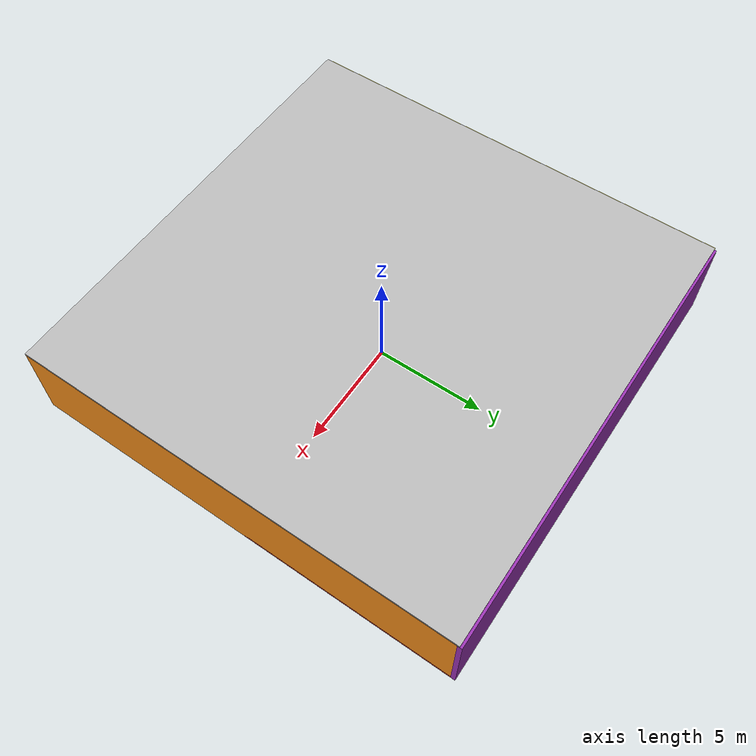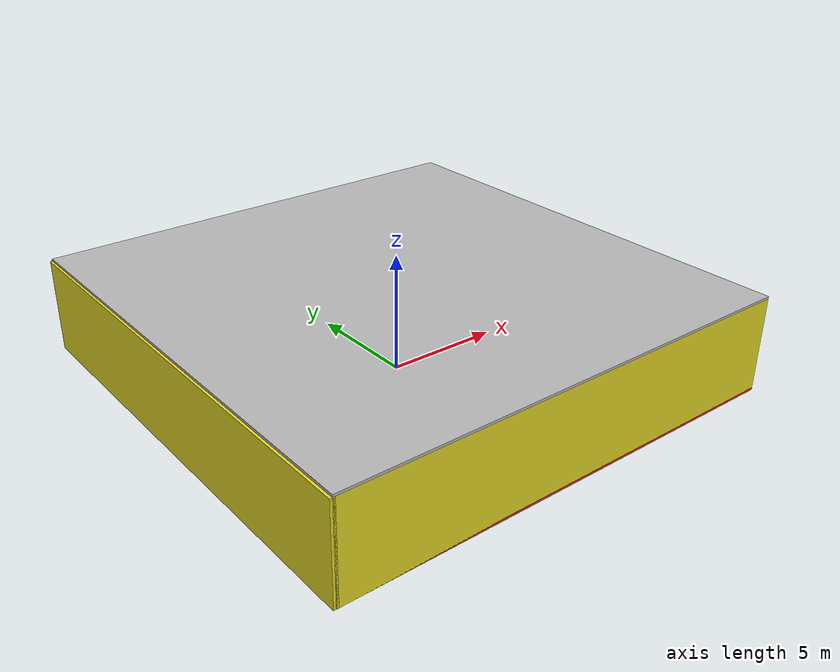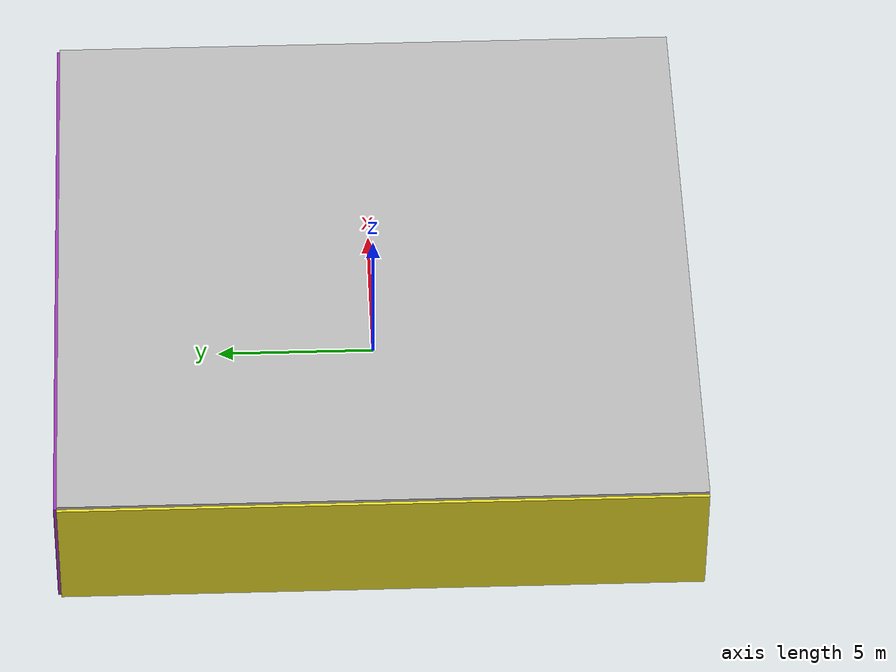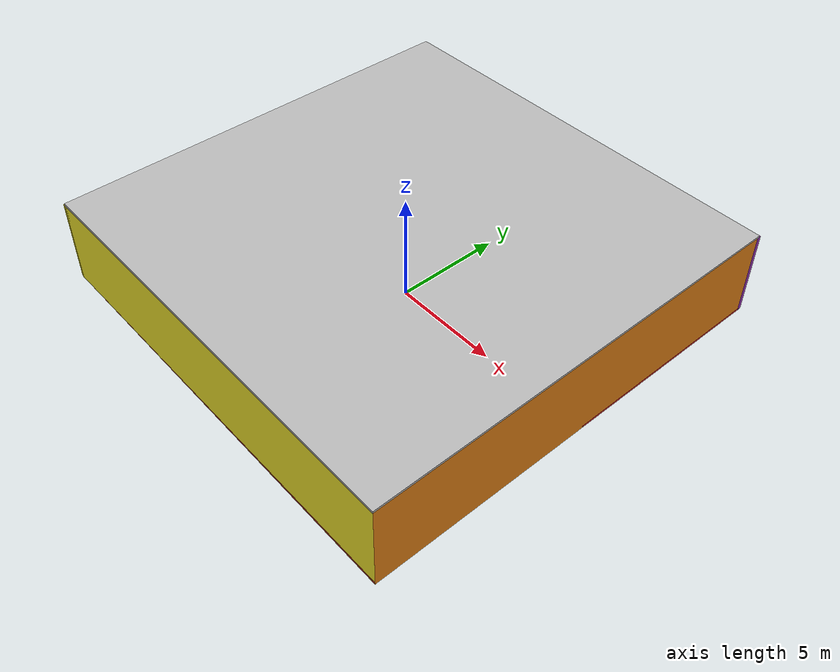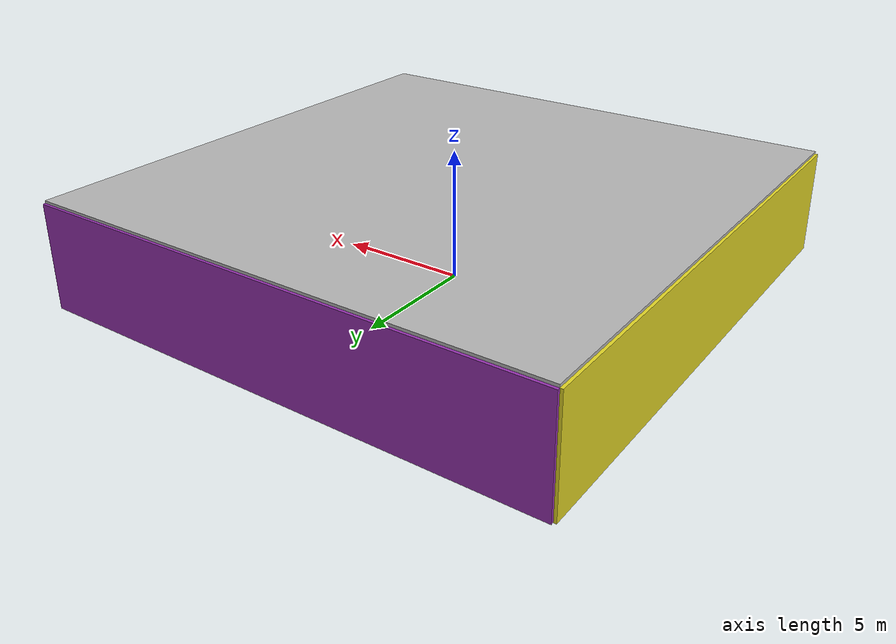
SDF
<sdf version="1.4">
 <world name="default">
  <physics type="ode">
   <max_step_size>0.001</max_step_size>
   <real_time_factor>1</real_time_factor>
   <real_time_update_rate>1000</real_time_update_rate>
   <gravity>0 0 -9.8</gravity>
  </physics>
  <scene><ambient>0.4 0.4 0.4 1</ambient><background>0.7 0.7 0.7 1</background><shadows>1</shadows></scene>
  <model name="Surrounding">
   <static>1</static>
   <link name="Ceiling">
    <collision name="Ceiling_Collision"><geometry><box><size>20 20 0.1</size></box></geometry></collision>
    <visual name="Ceiling_Visual">
     <geometry><box><size>20 20 0.1</size></box></geometry>
     <material>
      <script><uri>file://media/materials/scripts/gazebo.material</uri><name>Gazebo/LightOn</name></script>
     </material>
    </visual>
    <pose>0 0 4.05 0 0 0</pose>
   </link>
   <link name="Wall_South">
    <collision name="Wall_South_Collision">
     <geometry><box><size>20 0 4</size></box></geometry>
     <pose>0 0 2 0 -0 0</pose>
    </collision>
    <visual name="Wall_South_Visual">
     <pose>0 0 2 0 -0 0</pose>
     <geometry><box><size>20 0 4</size></box></geometry>
     <material>
      <script><uri>file://media/materials/scripts/gazebo.material</uri><name>Gazebo/YellowGlow</name></script>
     </material>
    </visual>
    <velocity_decay><linear>0</linear><angular>0</angular></velocity_decay>
    <pose>0 -10 0 0 -0 0</pose>
   </link>
   <link name="Wall_East">
    <collision name="Wall_21_Collision">
     <geometry><box><size>20 0 4</size></box></geometry>
     <pose>0 0 2 0 -0 0</pose>
    </collision>
    <visual name="Wall_21_Visual">
     <pose>0 0 2 0 -0 0</pose>
     <geometry><box><size>20 0 4</size></box></geometry>
     <material>
      <script><uri>file://media/materials/scripts/gazebo.material</uri><name>Gazebo/Orange</name></script>
     </material>
    </visual>
    <velocity_decay><linear>0</linear><angular>0</angular></velocity_decay>
    <pose>10 0 0 0 -0 1.5708</pose>
   </link>
   <link name="Wall_North">
    <collision name="Wall_22_Collision">
     <geometry><box><size>20 0.2 4</size></box></geometry>
     <pose>0 0 2 0 -0 0</pose>
    </collision>
    <visual name="Wall_22_Visual">
     <pose>0 0 2 0 -0 0</pose>
     <geometry><box><size>20 0.2 4</size></box></geometry>
     <material>
      <script><uri>file://media/materials/scripts/gazebo.material</uri><name>Gazebo/PurpleGlow</name></script>
     </material>
    </visual>
    <velocity_decay><linear>0</linear><angular>0</angular></velocity_decay>
    <pose>0 10 0 0 -0 0</pose>
   </link>
   <link name="Wall_West">
    <collision name="Wall_23_Collision">
     <geometry><box><size>20 0.2 4</size></box></geometry>
     <pose>0 0 2 0 -0 0</pose>
    </collision>
    <visual name="Wall_23_Visual">
     <pose>0 0 2 0 -0 0</pose>
     <geometry><box><size>20 0.2 4</size></box></geometry>
     <material>
      <script><uri>file://media/materials/scripts/gazebo.material</uri><name>Gazebo/Yellow</name></script>
     </material>
    </visual>
    <velocity_decay><linear>0</linear><angular>0</angular></velocity_decay>
    <pose>-10 0 0 0 0 -1.5708</pose>
   </link>
   <link name="Ground_link">
    <collision name="collision">
     <pose>0 0 .05 0 -0 0</pose>
     <geometry><box><size>20 20 0.1</size></box></geometry>
    </collision>
    <visual name="visual">
     <pose>0 0 .05 0 -0 0</pose>
     <geometry><box><size>20 20 0.1</size></box></geometry>
     <material>
      <script><uri>file://media/materials/scripts/gazebo.material</uri><name>Gazebo/Red</name></script>
     </material>
    </visual>
   </link>
   <static>1</static>
  </model>
  <spherical_coordinates>
   <surface_model>EARTH_WGS84</surface_model>
   <latitude_deg>0</latitude_deg>
   <longitude_deg>0</longitude_deg>
   <elevation>0</elevation>
   <heading_deg>0</heading_deg>
  </spherical_coordinates>
  <light name="lightball_0" type="diffuse">
   <diffuse>0.8 0.8 0.8 1</diffuse>
   <specular>0.2 0.2 0.2 1</specular>
   <attenuation>
    <range>100</range>
    <constant>0.7</constant>
    <linear>0.01</linear>
    <quadratic>0.001</quadratic>
   </attenuation>
   <direction>-0.5 0.1 -0.9</direction>
   <pose>-2.41063622861 6.73967177037 1.35312497876 0 0 0</pose>
  </light>
  <light name="lightball_1" type="diffuse">
   <diffuse>0.8 0.8 0.8 1</diffuse>
   <specular>0.2 0.2 0.2 1</specular>
   <attenuation>
    <range>100</range>
    <constant>0.7</constant>
    <linear>0.01</linear>
    <quadratic>0.001</quadratic>
   </attenuation>
   <direction>-0.5 0.1 -0.9</direction>
   <pose>6.66462954869 -0.593530890497 1.05316982809 0 0 0</pose>
  </light>
  <light name="lightball_2" type="diffuse">
   <diffuse>0.8 0.8 0.8 1</diffuse>
   <specular>0.2 0.2 0.2 1</specular>
   <attenuation>
    <range>100</range>
    <constant>0.7</constant>
    <linear>0.01</linear>
    <quadratic>0.001</quadratic>
   </attenuation>
   <direction>-0.5 0.1 -0.9</direction>
   <pose>4.40480727527 6.52199059284 2.06272077023 0 0 0</pose>
  </light>
  <light name="lightball_3" type="diffuse">
   <diffuse>0.8 0.8 0.8 1</diffuse>
   <specular>0.2 0.2 0.2 1</specular>
   <attenuation>
    <range>100</range>
    <constant>0.7</constant>
    <linear>0.01</linear>
    <quadratic>0.001</quadratic>
   </attenuation>
   <direction>-0.5 0.1 -0.9</direction>
   <pose>8.38275895539 5.29963453398 3.05565899776 0 0 0</pose>
  </light>
  <light name="lightball_4" type="diffuse">
   <diffuse>0.8 0.8 0.8 1</diffuse>
   <specular>0.2 0.2 0.2 1</specular>
   <attenuation>
    <range>100</range>
    <constant>0.7</constant>
    <linear>0.01</linear>
    <quadratic>0.001</quadratic>
   </attenuation>
   <direction>-0.5 0.1 -0.9</direction>
   <pose>-9.13731050707 -9.23434953774 0.509969031193 0 0 0</pose>
  </light>
  <include><uri>model://table</uri><pose>-7.07306428275 -5.48889543668 0 0 0 2.18424826428</pose></include>
  <include><uri>model://cabinet</uri><pose>-7.17232284858 3.93037289095 0 0 0 0.501581803551</pose></include>
  <include>
   <uri>model://robocup_3Dsim_goal</uri>
   <pose>-2.10137401905 -6.32059186166 0 0 0 0.26594568601</pose>
  </include>
  <include><uri>model://table</uri><pose>-2.08870747941 -4.27937488243 0 0 0 2.93123520924</pose></include>
  <include>
   <uri>model://textured_shapes</uri>
   <pose>-1.83045321977 4.95563143729 0 0 0 1.92181167312</pose>
  </include>
  <include><uri>model://cabinet</uri><pose>1.65553163385 -0.583653001525 0 0 0 2.24785324255</pose></include>
  <include>
   <uri>model://robocup_3Dsim_goal</uri>
   <pose>3.32353685581 4.51293996535 0 0 0 0.0398633735868</pose>
  </include>
  <include>
   <uri>model://robocup_3Dsim_goal</uri>
   <pose>3.99275919873 7.08407309862 0 0 0 0.652282477097</pose>
  </include>
 </world>
</sdf>

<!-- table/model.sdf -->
<sdf version="1.5">
  <model name="table">
    <static>true</static>
    <link name="link">
      <collision name="surface">
        <pose>0 0 1.0 0 0 0</pose>
        <geometry>
          <box>
            <size>1.5 0.8 0.03</size>
          </box>
        </geometry>
        <surface>
          <friction>
            <ode>
              <mu>0.6</mu>
              <mu2>0.6</mu2>
            </ode>
          </friction>
        </surface>
      </collision>
      <visual name="visual1">
        <pose>0 0 1.0 0 0 0</pose>
        <geometry>
          <box>
            <size>1.5 0.8 0.03</size>
          </box>
        </geometry>
        <material>
          <script>
            <uri>model://media/materials/scripts/gazebo.material</uri>
            <name>Gazebo/Wood</name>
          </script>
        </material>
      </visual>
      <collision name="front_left_leg">
        <pose>0.68 0.38 0.5 0 0 0</pose>
        <geometry>
          <cylinder>
            <radius>0.02</radius>
            <length>1.0</length>
          </cylinder>
        </geometry>
      </collision>
      <visual name="front_left_leg">
        <pose>0.68 0.38 0.5 0 0 0</pose>
        <geometry>
          <cylinder>
            <radius>0.02</radius>
            <length>1.0</length>
          </cylinder>
        </geometry>
        <material>
          <script>
            <uri>model://media/materials/scripts/gazebo.material</uri>
            <name>Gazebo/Grey</name>
          </script>
        </material>
      </visual>
      <collision name="front_right_leg">
        <pose>0.68 -0.38 0.5 0 0 0</pose>
        <geometry>
          <cylinder>
            <radius>0.02</radius>
            <length>1.0</length>
          </cylinder>
        </geometry>
      </collision>
      <visual name="front_right_leg">
        <pose>0.68 -0.38 0.5 0 0 0</pose>
        <geometry>
          <cylinder>
            <radius>0.02</radius>
            <length>1.0</length>
          </cylinder>
        </geometry>
        <material>
          <script>
            <uri>model://media/materials/scripts/gazebo.material</uri>
            <name>Gazebo/Grey</name>
          </script>
        </material>
      </visual>
      <collision name="back_right_leg">
        <pose>-0.68 -0.38 0.5 0 0 0</pose>
        <geometry>
          <cylinder>
            <radius>0.02</radius>
            <length>1.0</length>
          </cylinder>
        </geometry>
      </collision>
      <visual name="back_right_leg">
        <pose>-0.68 -0.38 0.5 0 0 0</pose>
        <geometry>
          <cylinder>
            <radius>0.02</radius>
            <length>1.0</length>
          </cylinder>
        </geometry>
        <material>
          <script>
            <uri>model://media/materials/scripts/gazebo.material</uri>
            <name>Gazebo/Grey</name>
          </script>
        </material>
      </visual>
      <collision name="back_left_leg">
        <pose>-0.68 0.38 0.5 0 0 0</pose>
        <geometry>
          <cylinder>
            <radius>0.02</radius>
            <length>1.0</length>
          </cylinder>
        </geometry>
      </collision>
      <visual name="back_left_leg">
        <pose>-0.68 0.38 0.5 0 0 0</pose>
        <geometry>
          <cylinder>
            <radius>0.02</radius>
            <length>1.0</length>
          </cylinder>
        </geometry>
        <material>
          <script>
            <uri>model://media/materials/scripts/gazebo.material</uri>
            <name>Gazebo/Grey</name>
          </script>
        </material>
      </visual>
    </link>
  </model>
</sdf>

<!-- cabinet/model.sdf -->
<sdf version="1.5">
  <model name="cabinet">
    <static>true</static>
    <link name="cabinet_bottom_plate">
      <inertial>
        <pose>0 0 -1 0 0 0</pose>
        <inertia>
          <ixx>2.050000</ixx>
          <ixy>0</ixy>
          <ixz>0</ixz>
          <iyy>2.050000</iyy>
          <iyz>0</iyz>
          <izz>2.050000</izz>
        </inertia>
        <mass>25.000000</mass>
      </inertial>
      <collision name="cabinet_bottom_plate_geom">
        <pose>0 0 0.010000 0 0 0</pose>
        <geometry>
          <box>
            <size>0.450000 0.450000 0.020000</size>
          </box>
        </geometry>
      </collision>
      <visual name="cabinet_bottom_plate_geom_visual">
        <pose>0 0 0.010000 0 0 0</pose>
        <geometry>
          <box>
            <size>0.450000 0.450000 0.020000</size>
          </box>
        </geometry>
        <material>
          <script>
            <uri>model://media/materials/scripts/gazebo.material</uri>
            <name>Gazebo/Wood</name>
          </script>
        </material>
      </visual>
      <collision name="cabinet_bottom_plate_geom_cabinet_back_plate">
        <pose>0.235000 0 0.510000 0 0 0</pose>
        <geometry>
          <box>
            <size>0.020000 0.450000 1.020000</size>
          </box>
        </geometry>
      </collision>
      <visual name="cabinet_bottom_plate_geom_cabinet_back_plate_visual">
        <pose>0.235000 0 0.510000 0 0 0</pose>
        <geometry>
          <box>
            <size>0.020000 0.450000 1.020000</size>
          </box>
        </geometry>
        <material>
          <script>
            <uri>model://media/materials/scripts/gazebo.material</uri>
            <name>Gazebo/Wood</name>
          </script>
        </material>
      </visual>
      <collision name="cabinet_bottom_plate_geom_cabinet_left_plate">
        <pose>0 0.235000 0.510000 0 0 0</pose>
        <geometry>
          <box>
            <size>0.450000 0.020000 1.020000</size>
          </box>
        </geometry>
      </collision>
      <visual name="cabinet_bottom_plate_geom_cabinet_left_plate_visual">
        <pose>0 0.235000 0.510000 0 0 0</pose>
        <geometry>
          <box>
            <size>0.450000 0.020000 1.020000</size>
          </box>
        </geometry>
        <material>
          <script>
            <uri>model://media/materials/scripts/gazebo.material</uri>
            <name>Gazebo/Wood</name>
          </script>
        </material>
      </visual>
      <collision name="cabinet_bottom_plate_geom_cabinet_middle_plate">
        <pose>0 0 0.510000 0 0 0</pose>
        <geometry>
          <box>
            <size>0.450000 0.450000 0.020000</size>
          </box>
        </geometry>
      </collision>
      <visual name="cabinet_bottom_plate_geom_cabinet_middle_plate_visual">
        <pose>0 0 0.510000 0 0 0</pose>
        <geometry>
          <box>
            <size>0.450000 0.450000 0.020000</size>
          </box>
        </geometry>
        <material>
          <script>
            <uri>model://media/materials/scripts/gazebo.material</uri>
            <name>Gazebo/Wood</name>
          </script>
        </material>
      </visual>
      <collision name="cabinet_bottom_plate_geom_cabinet_right_plate">
        <pose>0 -0.235000 0.510000 0 0 0</pose>
        <geometry>
          <box>
            <size>0.450000 0.020000 1.020000</size>
          </box>
        </geometry>
      </collision>
      <visual name="cabinet_bottom_plate_geom_cabinet_right_plate_visual">
        <pose>0 -0.235000 0.510000 0 0 0</pose>
        <geometry>
          <box>
            <size>0.450000 0.020000 1.020000</size>
          </box>
        </geometry>
        <material>
          <script>
            <uri>model://media/materials/scripts/gazebo.material</uri>
            <name>Gazebo/Wood</name>
          </script>
        </material>
      </visual>
      <collision name="cabinet_bottom_plate_geom_cabinet_top_plate">
        <pose>0 0 1.010000 0 0 0</pose>
        <geometry>
          <box>
            <size>0.450000 0.450000 0.020000</size>
          </box>
        </geometry>
      </collision>
      <visual name="cabinet_bottom_plate_geom_cabinet_top_plate_visual">
        <pose>0 0 1.010000 0 0 0</pose>
        <geometry>
          <box>
            <size>0.450000 0.450000 0.020000</size>
          </box>
        </geometry>
        <material>
          <script>
            <uri>model://media/materials/scripts/gazebo.material</uri>
            <name>Gazebo/Wood</name>
          </script>
        </material>
      </visual>
    </link>
  </model>
</sdf>

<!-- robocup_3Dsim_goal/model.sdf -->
<sdf version="1.5">
  <model name="robocup_3d_goal">
    <static>true</static>
    <link name="left_post">
      <pose>0 1.05 0.45 0 0 0</pose>
      <collision name="collision">
        <geometry>
          <cylinder>
            <radius>0.05</radius>
            <length>0.9</length>
          </cylinder>
        </geometry>
      </collision>
      <visual name="visual">
        <geometry>
          <cylinder>
            <radius>0.05</radius>
            <length>0.9</length>
          </cylinder>
        </geometry>
        <material>
          <script>
            <uri>file://media/materials/scripts/gazebo.material</uri>
            <name>Gazebo/ZincYellow</name>
          </script>
        </material>
      </visual>
    </link>
    <link name="left_support_horiz_lower">
      <pose>0.30 1.05 0.01 0 0 0</pose>
      <collision name="collision">
        <geometry>
          <box>
            <size>0.50 0.02 0.02</size>
          </box>
        </geometry>
      </collision>
      <visual name="visual">
        <geometry>
          <box>
            <size>0.50 0.02 0.02</size>
          </box>
        </geometry>
        <material>
          <script>
            <uri>file://media/materials/scripts/gazebo.material</uri>
            <name>Gazebo/White</name>
          </script>
        </material>
      </visual>
    </link>
    <link name="left_support_horiz_upper">
      <pose>0.30 1.05 0.79 0 0 0</pose>
      <collision name="collision">
        <geometry>
          <box>
            <size>0.50 0.02 0.02</size>
          </box>
        </geometry>
      </collision>
      <visual name="visual">
        <geometry>
          <box>
            <size>0.50 0.02 0.02</size>
          </box>
        </geometry>
        <material>
          <script>
            <uri>file://media/materials/scripts/gazebo.material</uri>
            <name>Gazebo/White</name>
          </script>
        </material>
      </visual>
    </link>
    <link name="left_support_vertical">
      <pose>0.56 1.05 0.4 0 1.5708 0</pose>
      <collision name="collision">
        <geometry>
          <box>
            <size>0.80 0.02 0.02</size>
          </box>
        </geometry>
      </collision>
      <visual name="visual">
        <geometry>
          <box>
            <size>0.80 0.02 0.02</size>
          </box>
        </geometry>
        <material>
          <script>
            <uri>file://media/materials/scripts/gazebo.material</uri>
            <name>Gazebo/White</name>
          </script>
        </material>
      </visual>
    </link>
    <link name="right_support_horiz_lower">
      <pose>0.30 -1.05 0.01 0 0 0</pose>
      <collision name="collision">
        <geometry>
          <box>
            <size>0.50 0.02 0.02</size>
          </box>
        </geometry>
      </collision>
      <visual name="visual">
        <geometry>
          <box>
            <size>0.50 0.02 0.02</size>
          </box>
        </geometry>
        <material>
          <script>
            <uri>file://media/materials/scripts/gazebo.material</uri>
            <name>Gazebo/White</name>
          </script>
        </material>
      </visual>
    </link>
    <link name="right_support_horiz_upper">
      <pose>0.30 -1.05 0.79 0 0 0</pose>
      <collision name="collision">
        <geometry>
          <box>
            <size>0.50 0.02 0.02</size>
          </box>
        </geometry>
      </collision>
      <visual name="visual">
        <geometry>
          <box>
            <size>0.50 0.02 0.02</size>
          </box>
        </geometry>
        <material>
          <script>
            <uri>file://media/materials/scripts/gazebo.material</uri>
            <name>Gazebo/White</name>
          </script>
        </material>
      </visual>
    </link>
    <link name="right_support_vertical">
      <pose>0.56 -1.05 0.4 0 1.5708 0</pose>
      <collision name="collision">
        <geometry>
          <box>
            <size>0.80 0.02 0.02</size>
          </box>
        </geometry>
      </collision>
      <visual name="visual">
        <geometry>
          <box>
            <size>0.80 0.02 0.02</size>
          </box>
        </geometry>
        <material>
          <script>
            <uri>file://media/materials/scripts/gazebo.material</uri>
            <name>Gazebo/White</name>
          </script>
        </material>
      </visual>
    </link>
    <link name="center_support_horiz_lower">
      <pose>0.56 0 0.01 0 1.5708 0</pose>
      <collision name="collision">
        <geometry>
          <box>
            <size>0.02 2.08 0.02</size>
          </box>
        </geometry>
      </collision>
      <visual name="visual">
        <geometry>
          <box>
            <size>0.02 2.08 0.02</size>
          </box>
        </geometry>
        <material>
          <script>
            <uri>file://media/materials/scripts/gazebo.material</uri>
            <name>Gazebo/White</name>
          </script>
        </material>
      </visual>
    </link>
    <link name="center_support_horiz_upper">
      <pose>0.56 0 0.79 0 1.5708 0</pose>
      <collision name="collision">
        <geometry>
          <box>
            <size>0.02 2.08 0.02</size>
          </box>
        </geometry>
      </collision>
      <visual name="visual">
        <geometry>
          <box>
            <size>0.02 2.08 0.02</size>
          </box>
        </geometry>
        <material>
          <script>
            <uri>file://media/materials/scripts/gazebo.material</uri>
            <name>Gazebo/White</name>
          </script>
        </material>
      </visual>
    </link>
    <link name="right_post">
      <pose>0 -1.05 0.45 0 0 0</pose>
      <collision name="collision">
        <geometry>
          <cylinder>
            <radius>0.05</radius>
            <length>0.9</length>
          </cylinder>
        </geometry>
      </collision>
      <visual name="visual">
        <geometry>
          <cylinder>
            <radius>0.05</radius>
            <length>0.9</length>
          </cylinder>
        </geometry>
        <material>
          <script>
            <uri>file://media/materials/scripts/gazebo.material</uri>
            <name>Gazebo/ZincYellow</name>
          </script>
        </material>
      </visual>
    </link>
    <link name="crossbar">
      <pose>0 0 0.85 1.57 1.57 0</pose>
      <collision name="collision">
        <geometry>
          <cylinder>
            <radius>0.05</radius>
            <length>2.0</length>
          </cylinder>
        </geometry>
      </collision>
      <visual name="visual">
        <geometry>
          <cylinder>
            <radius>0.05</radius>
            <length>2.0</length>
          </cylinder>
        </geometry>
        <material>
          <script>
            <uri>file://media/materials/scripts/gazebo.material</uri>
            <name>Gazebo/ZincYellow</name>
          </script>
        </material>
      </visual>
    </link>
    <link name="center_net">
      <pose>0.56 0 0.40 0 0 0</pose>
      <collision name="collision">
        <geometry>
          <box>
            <size>0.01 2.1 0.80</size>
          </box>
        </geometry>
      </collision>
      <visual name="visual">
        <geometry>
          <box>
            <size>0.01 2.1 0.80</size>
          </box>
        </geometry>
        <material>
          <script>
            <uri>model://../model_source/models/robocup09_spl_field/materials/scripts/</uri>
            <uri>model://../model_source/models/robocup09_spl_field/materials/textures/</uri>
            <name>RoboCup/Net</name>
          </script>
        </material>
      </visual>
    </link>
    <link name="left_net">
      <pose>0.30 1.05 0.40 0 0 0</pose>
      <collision name="collision">
        <geometry>
          <box>
            <size>0.50 0.01 0.76</size>
          </box>
        </geometry>
      </collision>
      <visual name="visual">
        <geometry>
          <box>
            <size>0.50 0.01 0.76</size>
          </box>
        </geometry>
        <material>
          <script>
            <uri>model://../model_source/models/robocup09_spl_field/materials/scripts/</uri>
            <uri>model://../model_source/models/robocup09_spl_field/materials/textures/</uri>
            <name>RoboCup/Net</name>
          </script>
        </material>
      </visual>
    </link>
    <link name="right_net">
      <pose>0.30 -1.05 0.40 0 0 0</pose>
      <collision name="collision">
        <geometry>
          <box>
            <size>0.50 0.01 0.76</size>
          </box>
        </geometry>
      </collision>
      <visual name="visual">
        <geometry>
          <box>
            <size>0.50 0.01 0.76</size>
          </box>
        </geometry>
        <material>
          <script>
            <uri>model://../model_source/models/robocup09_spl_field/materials/scripts/</uri>
            <uri>model://../model_source/models/robocup09_spl_field/materials/textures/</uri>
            <name>RoboCup/Net</name>
          </script>
        </material>
      </visual>
    </link>
  </model>
</sdf>

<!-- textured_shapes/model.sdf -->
<sdf version="1.6">
  <model name="textured_shapes">
    <pose>0 0 0.5 0 0 0</pose>
    <link name="box">
      <pose>0 -1.5 0 0 0 0</pose>
      <collision name="collision">
        <geometry>
          <box>
            <size>1 1 1</size>
          </box>
        </geometry>
      </collision>
      <visual name="visual">
        <geometry>
          <box>
            <size>1 1 1</size>
          </box>
        </geometry>
        <material>
          <script>
            <uri>model://../model_source/models/textured_shapes/materials/scripts</uri>
            <uri>model://../model_source/models/textured_shapes/materials/textures</uri>
            <name>TexturedShape/Squares</name>
          </script>
        </material>
      </visual>
    </link>
    <link name="sphere">
      <collision name="collision">
        <geometry>
          <sphere>
            <radius>0.5</radius>
          </sphere>
        </geometry>
      </collision>
      <visual name="visual">
        <geometry>
          <sphere>
            <radius>0.5</radius>
          </sphere>
        </geometry>
        <material>
          <script>
            <uri>model://../model_source/models/textured_shapes/materials/scripts</uri>
            <uri>model://../model_source/models/textured_shapes/materials/textures</uri>
            <name>TexturedShape/Squares</name>
          </script>
        </material>
      </visual>
    </link>
    <link name="cylinder">
      <pose>0 1.5 0 0 0 0</pose>
      <collision name="collision">
        <geometry>
          <cylinder>
            <radius>0.5</radius>
            <length>1</length>
          </cylinder>
        </geometry>
      </collision>
      <visual name="visual">
        <geometry>
          <cylinder>
            <radius>0.5</radius>
            <length>1</length>
          </cylinder>
        </geometry>
        <material>
          <script>
            <uri>model://../model_source/models/textured_shapes/materials/scripts</uri>
            <uri>model://../model_source/models/textured_shapes/materials/textures</uri>
            <name>TexturedShape/Squares</name>
          </script>
        </material>
      </visual>
    </link>
  </model>
</sdf>
